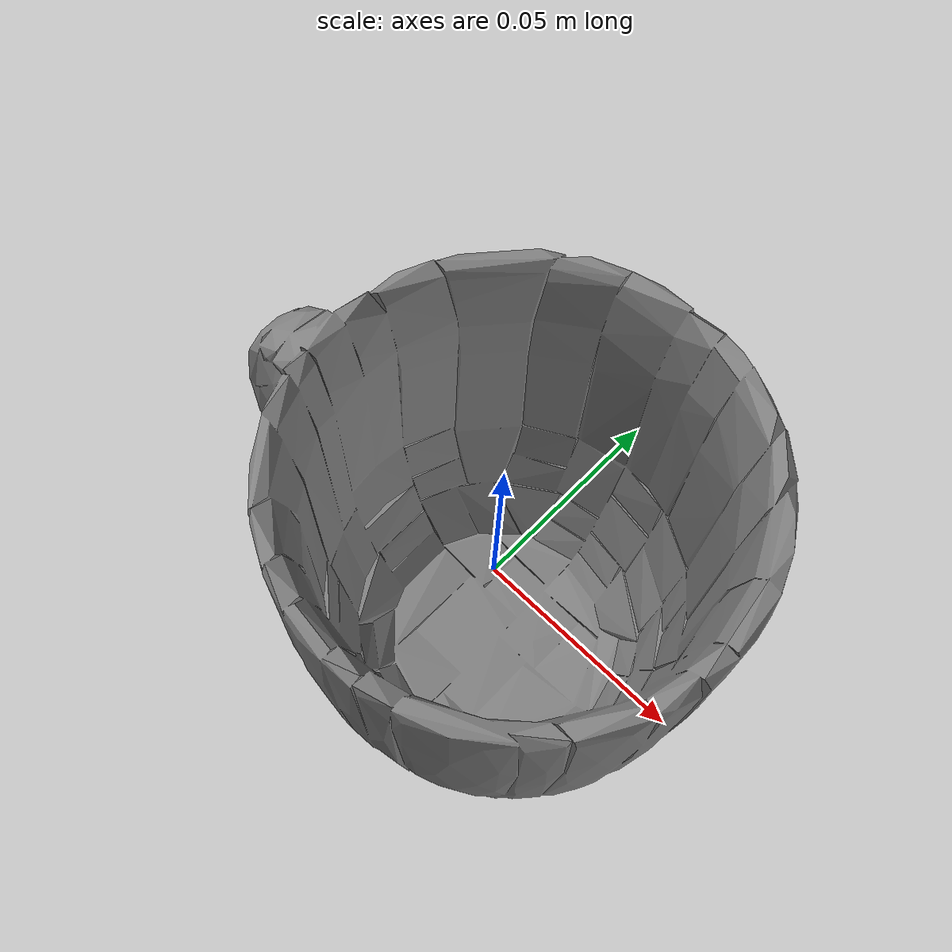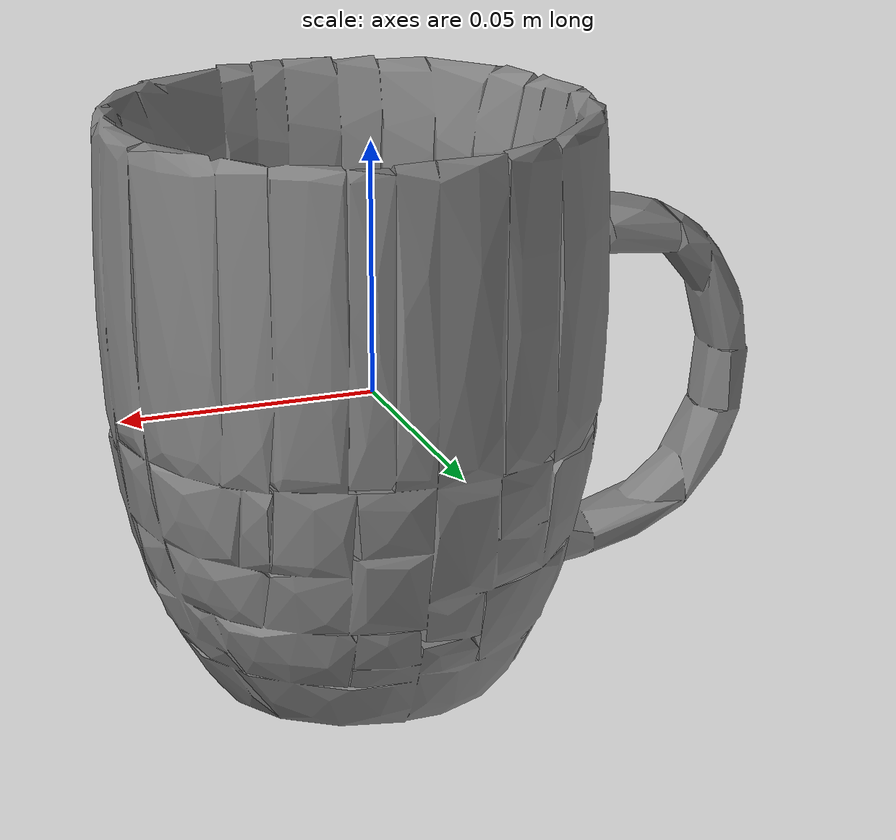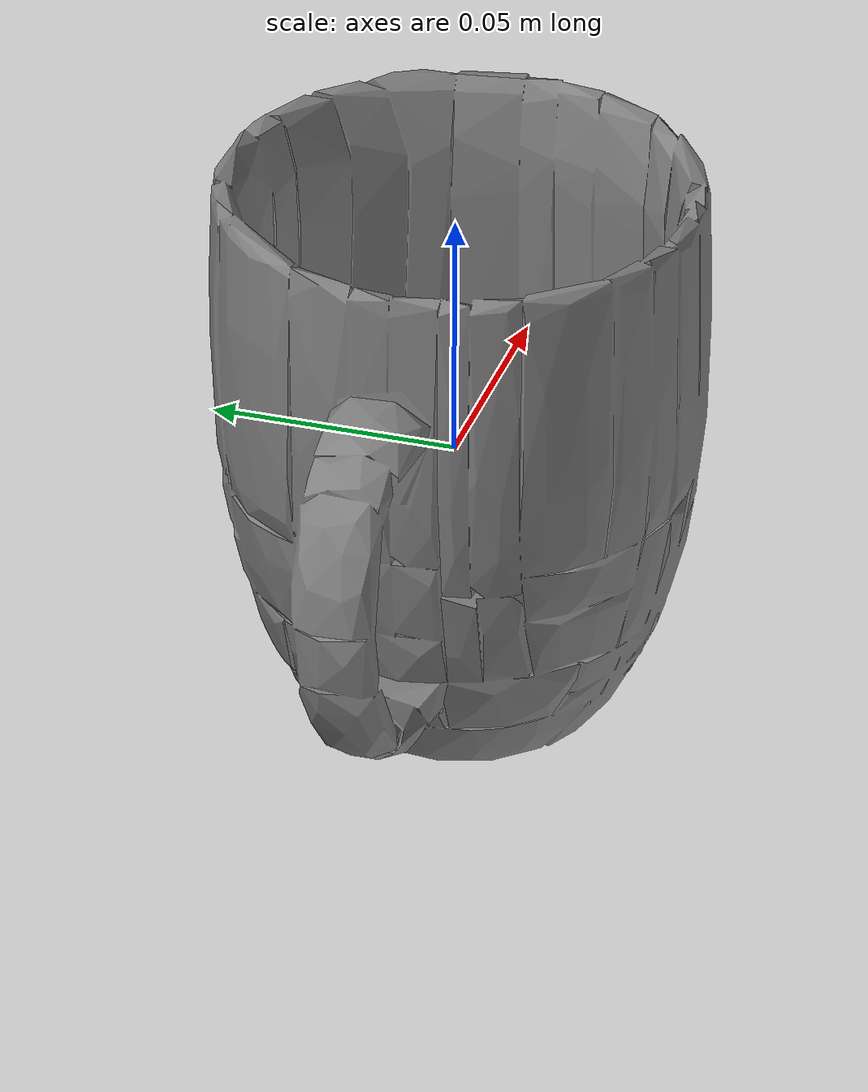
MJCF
<mujoco model="mug_Threshold_Porcelain_Coffee_Mug_All_Over_Bead_White_M">
  <default>
    <default class="visual">
      <geom group="2" type="mesh" contype="0" conaffinity="0" />
    </default>
    <default class="collision">
      <geom group="3" type="mesh" />
    </default>
  </default>
  <asset>
    <mesh file="mug_Threshold_Porcelain_Coffee_Mug_All_Over_Bead_White_M.stl" />
    <mesh file="mug_Threshold_Porcelain_Coffee_Mug_All_Over_Bead_White_M_collision_0.stl" />
    <mesh file="mug_Threshold_Porcelain_Coffee_Mug_All_Over_Bead_White_M_collision_1.stl" />
    <mesh file="mug_Threshold_Porcelain_Coffee_Mug_All_Over_Bead_White_M_collision_2.stl" />
    <mesh file="mug_Threshold_Porcelain_Coffee_Mug_All_Over_Bead_White_M_collision_3.stl" />
    <mesh file="mug_Threshold_Porcelain_Coffee_Mug_All_Over_Bead_White_M_collision_4.stl" />
    <mesh file="mug_Threshold_Porcelain_Coffee_Mug_All_Over_Bead_White_M_collision_5.stl" />
    <mesh file="mug_Threshold_Porcelain_Coffee_Mug_All_Over_Bead_White_M_collision_6.stl" />
    <mesh file="mug_Threshold_Porcelain_Coffee_Mug_All_Over_Bead_White_M_collision_7.stl" />
    <mesh file="mug_Threshold_Porcelain_Coffee_Mug_All_Over_Bead_White_M_collision_8.stl" />
    <mesh file="mug_Threshold_Porcelain_Coffee_Mug_All_Over_Bead_White_M_collision_9.stl" />
    <mesh file="mug_Threshold_Porcelain_Coffee_Mug_All_Over_Bead_White_M_collision_10.stl" />
    <mesh file="mug_Threshold_Porcelain_Coffee_Mug_All_Over_Bead_White_M_collision_11.stl" />
    <mesh file="mug_Threshold_Porcelain_Coffee_Mug_All_Over_Bead_White_M_collision_12.stl" />
    <mesh file="mug_Threshold_Porcelain_Coffee_Mug_All_Over_Bead_White_M_collision_13.stl" />
    <mesh file="mug_Threshold_Porcelain_Coffee_Mug_All_Over_Bead_White_M_collision_14.stl" />
    <mesh file="mug_Threshold_Porcelain_Coffee_Mug_All_Over_Bead_White_M_collision_15.stl" />
  </asset>
  <worldbody>
    <body name="mug_Threshold_Porcelain_Coffee_Mug_All_Over_Bead_White_M">
      <geom mesh="mug_Threshold_Porcelain_Coffee_Mug_All_Over_Bead_White_M" class="visual" />
      <geom mesh="mug_Threshold_Porcelain_Coffee_Mug_All_Over_Bead_White_M_collision_0" class="collision" />
      <geom mesh="mug_Threshold_Porcelain_Coffee_Mug_All_Over_Bead_White_M_collision_1" class="collision" />
      <geom mesh="mug_Threshold_Porcelain_Coffee_Mug_All_Over_Bead_White_M_collision_2" class="collision" />
      <geom mesh="mug_Threshold_Porcelain_Coffee_Mug_All_Over_Bead_White_M_collision_3" class="collision" />
      <geom mesh="mug_Threshold_Porcelain_Coffee_Mug_All_Over_Bead_White_M_collision_4" class="collision" />
      <geom mesh="mug_Threshold_Porcelain_Coffee_Mug_All_Over_Bead_White_M_collision_5" class="collision" />
      <geom mesh="mug_Threshold_Porcelain_Coffee_Mug_All_Over_Bead_White_M_collision_6" class="collision" />
      <geom mesh="mug_Threshold_Porcelain_Coffee_Mug_All_Over_Bead_White_M_collision_7" class="collision" />
      <geom mesh="mug_Threshold_Porcelain_Coffee_Mug_All_Over_Bead_White_M_collision_8" class="collision" />
      <geom mesh="mug_Threshold_Porcelain_Coffee_Mug_All_Over_Bead_White_M_collision_9" class="collision" />
      <geom mesh="mug_Threshold_Porcelain_Coffee_Mug_All_Over_Bead_White_M_collision_10" class="collision" />
      <geom mesh="mug_Threshold_Porcelain_Coffee_Mug_All_Over_Bead_White_M_collision_11" class="collision" />
      <geom mesh="mug_Threshold_Porcelain_Coffee_Mug_All_Over_Bead_White_M_collision_12" class="collision" />
      <geom mesh="mug_Threshold_Porcelain_Coffee_Mug_All_Over_Bead_White_M_collision_13" class="collision" />
      <geom mesh="mug_Threshold_Porcelain_Coffee_Mug_All_Over_Bead_White_M_collision_14" class="collision" />
      <geom mesh="mug_Threshold_Porcelain_Coffee_Mug_All_Over_Bead_White_M_collision_15" class="collision" />
    </body>
  </worldbody>
</mujoco>
